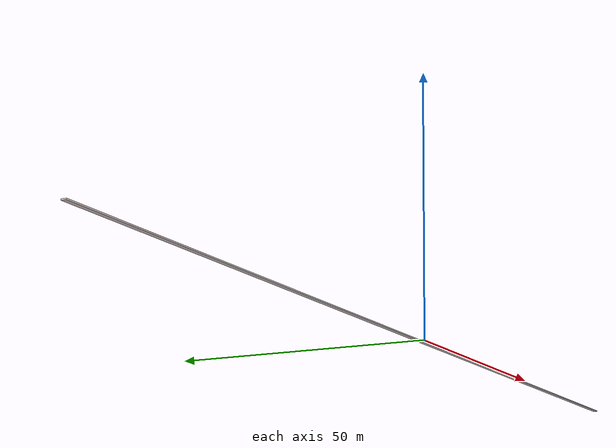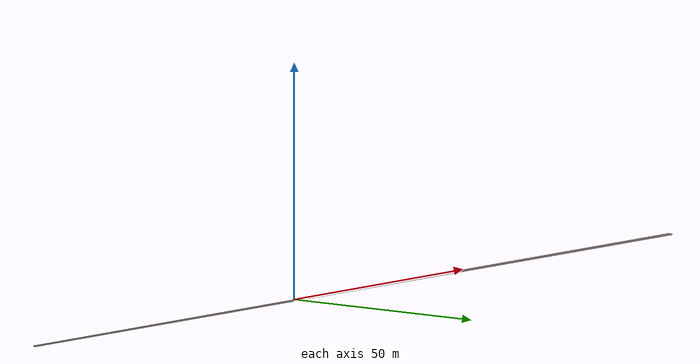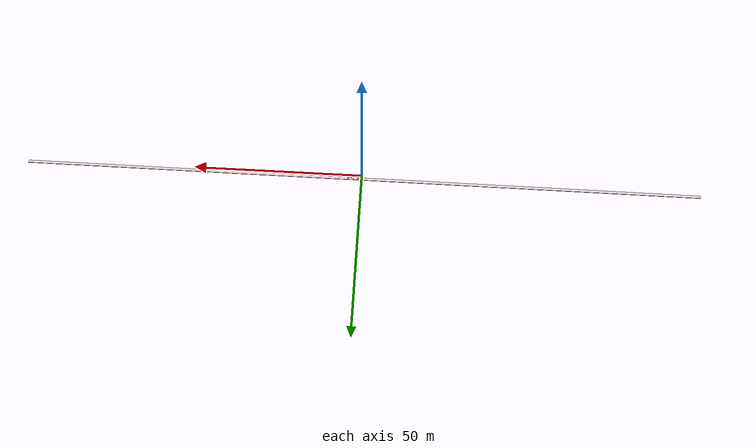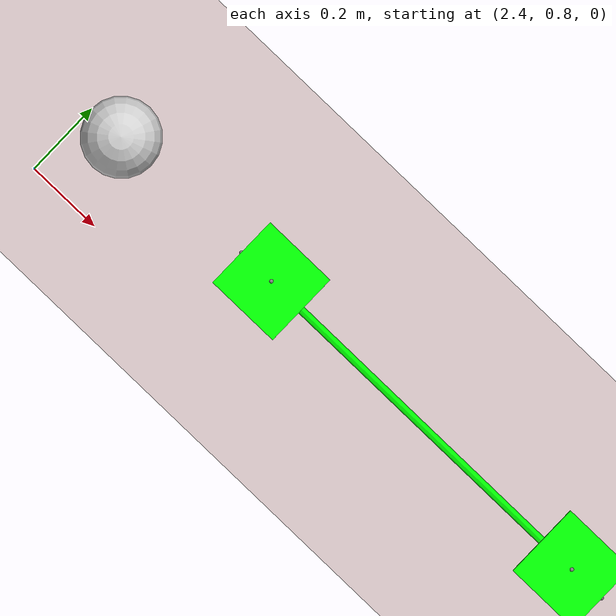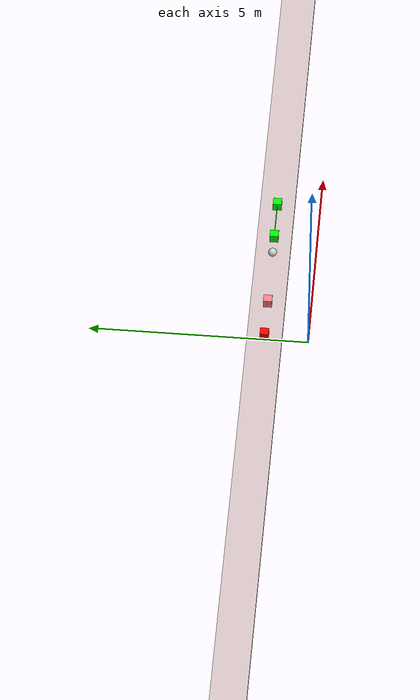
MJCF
<mujoco>
            <compiler angle="radian" autolimits="true" />
            <compiler meshdir="asset" texturedir="asset" assetdir="asset" />
            <option gravity="0 0 -9.81" />
            <default class="main">
            <geom friction="0 0 0" solimp="0.9 1 0.001 0.01 20" solref="0.02 1" condim="1" />
        </default>

        <visual>
            <headlight diffuse="0.7 0.7 0.7" ambient="0.5 0.5 0.5" />
            <global offwidth="1920" offheight="1080" />
        </visual>

        <asset>
            <texture type="skybox" builtin="gradient" rgb1="0 0.5 0.7" rgb2="0 0 0" width="512" height="512" />
            <texture type="2d" name="checks1" builtin="checker" rgb1="1 1 1" rgb2="0 0 0" width="256" height="256" />
            <material name="test_color" texture="checks1" texuniform="true" texrepeat="2 2" />
            <material name="reflectance" reflectance=".4" />
            <texture name="grid" type="2d" builtin="checker" width="512" height="512" rgb1="1.0 0.6235 0.1098" rgb2="1.0 0.749 0.4118" />
            <texture name="white-texture-background" type="2d" file="/home/aryansatpathy/DevStuff/cmu/PHO/sim/geom_sources/fixed_sources/rocket/rocket.white-texture-background.png" content_type="image/png" />
            <material name="pulley" texture="grid" texrepeat="2 2" texuniform="true" />

        </asset>
        <worldbody><body name="ComplexCollisionPlane.plane" pos="0.0 1.0 0.0" quat="1.0 0.0 0.0 0.0"><geom name="ComplexCollisionPlane.plane.geom" type="box" pos="0 0 0" size="100 0.4 0.1" material="reflectance" rgba="0.82745098 0.75686275 0.76470588 1" mass="1.0" quat="0 0 0 1" condim="1" contype="1" conaffinity="1" />
<site name="ComplexCollisionPlane.plane.sensor" pos="0 0 0" quat="1.0 -0.0 -0.0 -0.0" />
<site name="ComplexCollisionPlane.plane.left" pos="-100.05 0 0.2" quat="1.0 -0.0 -0.0 -0.0" />
<site name="ComplexCollisionPlane.plane.right" pos="100.05 0 0.2" quat="1.0 -0.0 -0.0 -0.0" />
</body>
<body name="ComplexCollisionPlane.mass-0" pos="1.0 1.0 0.2" quat="1.0 0.0 0.0 0.0">
<geom name="ComplexCollisionPlane.mass-0.geom" type="box" pos="0 0 0" size="0.1 0.1 0.1" rgba="1.0 0.5 0.5 1.0" mass="2.0" quat="0 0 0 1" condim="1" contype="1" conaffinity="1" />
<site name="ComplexCollisionPlane.mass-0.top-1" pos="0.0 0 0.1" quat="1.0 -0.0 -0.0 -0.0" />
<site name="ComplexCollisionPlane.mass-0.sensor" pos="0 0 0" quat="1.0 -0.0 -0.0 -0.0" />
<site name="ComplexCollisionPlane.mass-0.center" pos="0 0 0" quat="1.0 -0.0 -0.0 -0.0" />
<site name="ComplexCollisionPlane.mass-0.left" pos="-0.1 0 0" quat="1.0 -0.0 -0.0 -0.0" />
<site name="ComplexCollisionPlane.mass-0.right" pos="0.1 0 0" quat="1.0 -0.0 -0.0 -0.0" />
<site name="ComplexCollisionPlane.mass-0.bottom" pos="0 0 -0.1" quat="1.0 -0.0 -0.0 -0.0" />
<joint name="ComplexCollisionPlane.mass-0.joint-x" type="slide" axis="1 0 0" pos="0 0 0" />
<joint name="ComplexCollisionPlane.mass-0.joint-z" type="slide" axis="-0.0 0 1.0" pos="0 0 0" />
</body>
<body name="ComplexCollisionPlane.sphere-1" pos="2.5 1.0 0.2" quat="1.0 0.0 0.0 0.0"><geom name="ComplexCollisionPlane.sphere-1.geom" type="sphere" pos="0 0 0" size="0.1" material="pulley" rgba="0.8 0.8 0.8 1.0" mass="5" quat="0 0 0 1" contype="1" conaffinity="1" />
<site name="ComplexCollisionPlane.sphere-1.site" pos="0 0 0" quat="1.0 -0.0 -0.0 -0.0" />
<site name="ComplexCollisionPlane.sphere-1.center_site" pos="0 0 0" quat="1.0 -0.0 -0.0 -0.0" />
<joint name="ComplexCollisionPlane.sphere-1.joint-x" type="slide" axis="1 0 0" pos="0 0 0" />
<joint name="ComplexCollisionPlane.sphere-1.joint-z" type="slide" axis="-0.0 0 1.0" pos="0 0 0" />
</body>
<body name="ComplexCollisionPlane.fixed_mass-2" pos="0.0 1.0 0.2" quat="1.0 0.0 0.0 0.0"><geom name="ComplexCollisionPlane.fixed_mass-2.geom" type="box" pos="0 0 0" size="0.1 0.1 0.1" rgba="1 0 0 1" mass="5.0" quat="0 0 0 1" contype="1" conaffinity="1" />
<site name="ComplexCollisionPlane.fixed_mass-2.center_site" pos="0 0 0" quat="1.0 -0.0 -0.0 -0.0" />
</body>
<body name="ComplexCollisionPlane.spring_mass-3.mass-0" pos="3.0 1.0 0.2" quat="1.0 0.0 0.0 0.0">
<geom name="ComplexCollisionPlane.spring_mass-3.mass-0.geom" type="box" pos="0 0 0" size="0.1 0.1 0.1" rgba="0 1 0 1" mass="1.0" quat="0 0 0 1" condim="1" contype="1" conaffinity="1" />
<site name="ComplexCollisionPlane.spring_mass-3.mass-0.top-1" pos="0.0 0 0.1" quat="1.0 -0.0 -0.0 -0.0" />
<site name="ComplexCollisionPlane.spring_mass-3.mass-0.sensor" pos="0 0 0" quat="1.0 -0.0 -0.0 -0.0" />
<site name="ComplexCollisionPlane.spring_mass-3.mass-0.center" pos="0 0 0" quat="1.0 -0.0 -0.0 -0.0" />
<site name="ComplexCollisionPlane.spring_mass-3.mass-0.left" pos="-0.1 0 0" quat="1.0 -0.0 -0.0 -0.0" />
<site name="ComplexCollisionPlane.spring_mass-3.mass-0.right" pos="0.1 0 0" quat="1.0 -0.0 -0.0 -0.0" />
<site name="ComplexCollisionPlane.spring_mass-3.mass-0.bottom" pos="0 0 -0.1" quat="1.0 -0.0 -0.0 -0.0" />
<joint name="ComplexCollisionPlane.spring_mass-3.mass-0.joint-x" type="slide" axis="1 0 0" pos="0 0 0" />
<joint name="ComplexCollisionPlane.spring_mass-3.mass-0.joint-z" type="slide" axis="0.0 0 1.0" pos="0 0 0" />
</body>
<body name="ComplexCollisionPlane.spring_mass-3.mass-1" pos="4.0 1.0 0.2" quat="1.0 0.0 0.0 0.0">
<geom name="ComplexCollisionPlane.spring_mass-3.mass-1.geom" type="box" pos="0 0 0" size="0.1 0.1 0.1" rgba="0 1 0 1" mass="1.0" quat="0 0 0 1" condim="1" contype="1" conaffinity="1" />
<site name="ComplexCollisionPlane.spring_mass-3.mass-1.top-1" pos="0.0 0 0.1" quat="1.0 -0.0 -0.0 -0.0" />
<site name="ComplexCollisionPlane.spring_mass-3.mass-1.sensor" pos="0 0 0" quat="1.0 -0.0 -0.0 -0.0" />
<site name="ComplexCollisionPlane.spring_mass-3.mass-1.center" pos="0 0 0" quat="1.0 -0.0 -0.0 -0.0" />
<site name="ComplexCollisionPlane.spring_mass-3.mass-1.left" pos="-0.1 0 0" quat="1.0 -0.0 -0.0 -0.0" />
<site name="ComplexCollisionPlane.spring_mass-3.mass-1.right" pos="0.1 0 0" quat="1.0 -0.0 -0.0 -0.0" />
<site name="ComplexCollisionPlane.spring_mass-3.mass-1.bottom" pos="0 0 -0.1" quat="1.0 -0.0 -0.0 -0.0" />
<joint name="ComplexCollisionPlane.spring_mass-3.mass-1.joint-x" type="slide" axis="1 0 0" pos="0 0 0" />
<joint name="ComplexCollisionPlane.spring_mass-3.mass-1.joint-z" type="slide" axis="0.0 0 1.0" pos="0 0 0" />
</body>
</worldbody><tendon>
<spatial name="ComplexCollisionPlane.spring_mass-3.spring-0" width="0.01" rgba="0 1 0 1" stiffness="50.0" springlength="1.0" damping="0.0" limited="false" solimplimit="0.99 1 0.001 0.01 20" solreflimit="0.02 1">
<site site="ComplexCollisionPlane.spring_mass-3.mass-0.center" />
<site site="ComplexCollisionPlane.spring_mass-3.mass-1.center" />
</spatial>
</tendon>

        <sensor>

        </sensor>
        <custom>
            <text name="coefficient_restitution" data="(ComplexCollisionPlane.mass-0, ComplexCollisionPlane.sphere-1, 1)-(ComplexCollisionPlane.fixed_mass-2, ComplexCollisionPlane.sphere-1, 1)-(ComplexCollisionPlane.fixed_mass-2, ComplexCollisionPlane.spring_mass-3.mass-0, 1)-(ComplexCollisionPlane.fixed_mass-2, ComplexCollisionPlane.spring_mass-3.mass-1, 1)" />

        </custom>
        <contact>
            <pair geom1="ComplexCollisionPlane.mass-0.geom" geom2="ComplexCollisionPlane.sphere-1.geom" solref="-2500 0" />
<pair geom1="ComplexCollisionPlane.fixed_mass-2.geom" geom2="ComplexCollisionPlane.sphere-1.geom" solref="-2500 0" />
<pair geom1="ComplexCollisionPlane.fixed_mass-2.geom" geom2="ComplexCollisionPlane.spring_mass-3.mass-0.geom" solref="-2500 0" />
<pair geom1="ComplexCollisionPlane.fixed_mass-2.geom" geom2="ComplexCollisionPlane.spring_mass-3.mass-1.geom" solref="-2500 0" />

        </contact>
        <actuator>

        </actuator>
    </mujoco>
